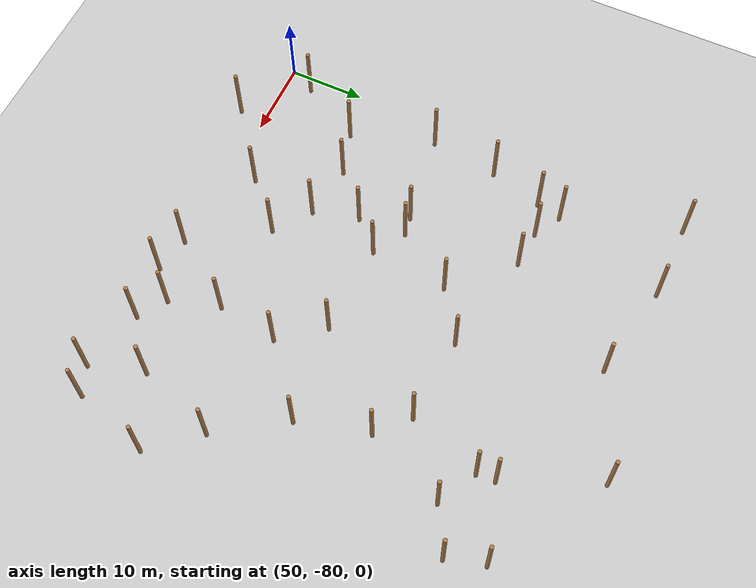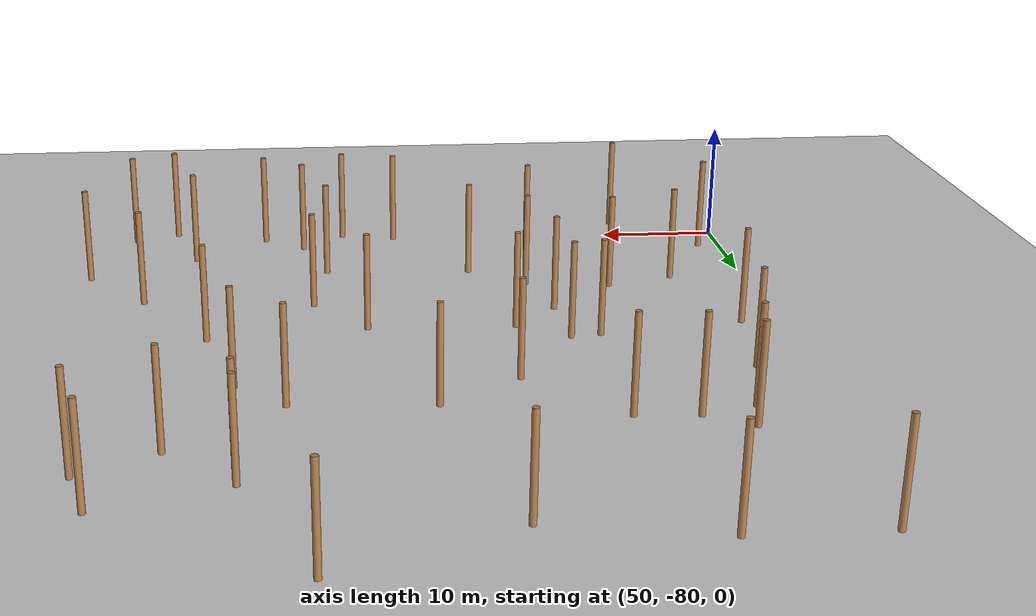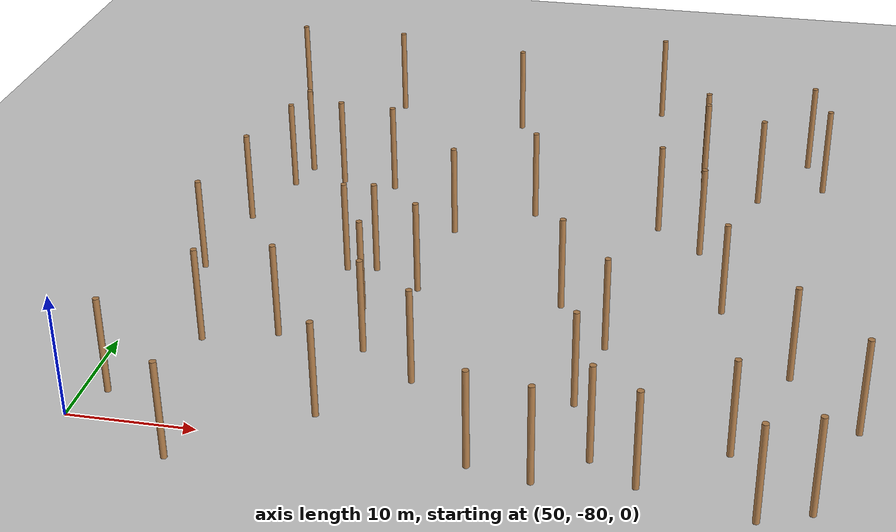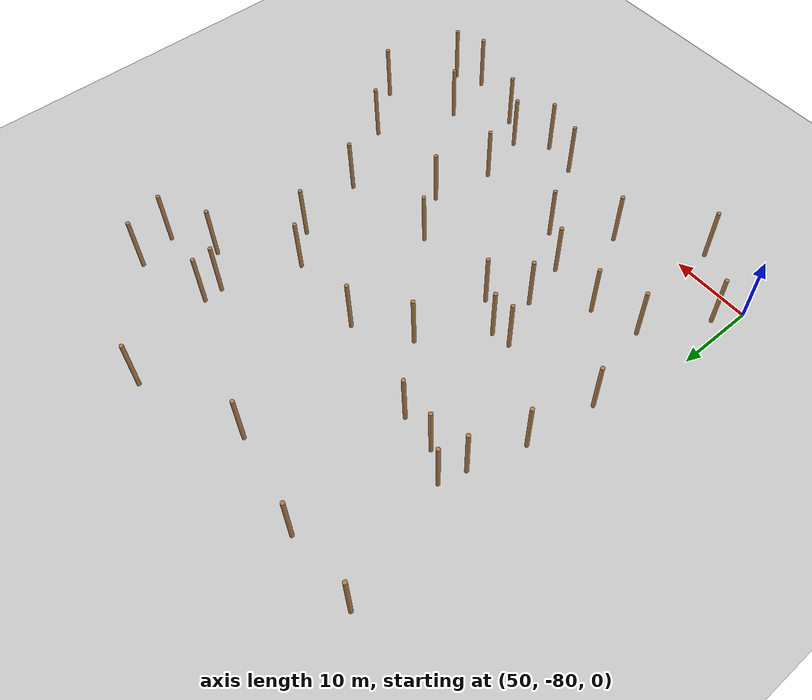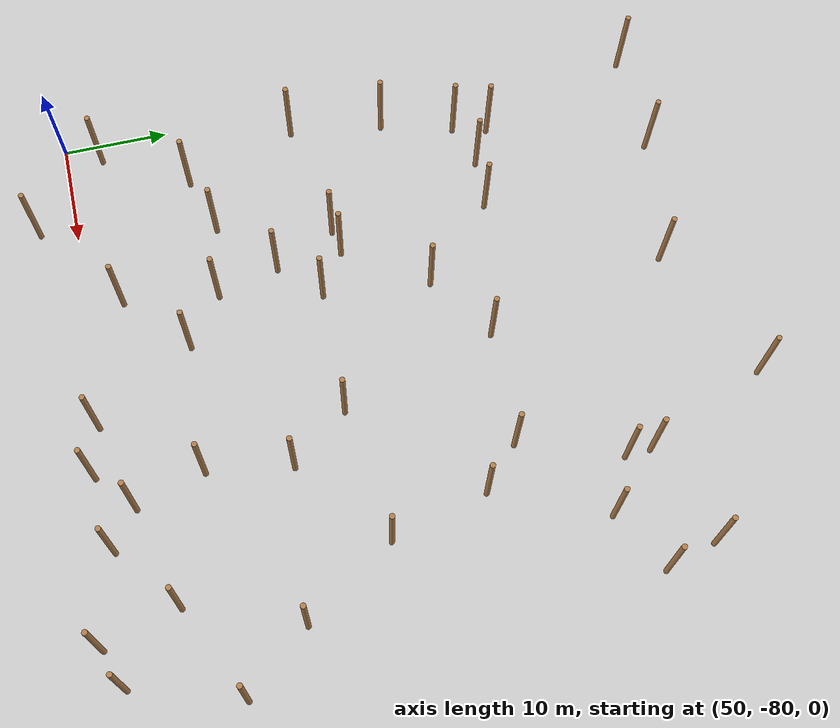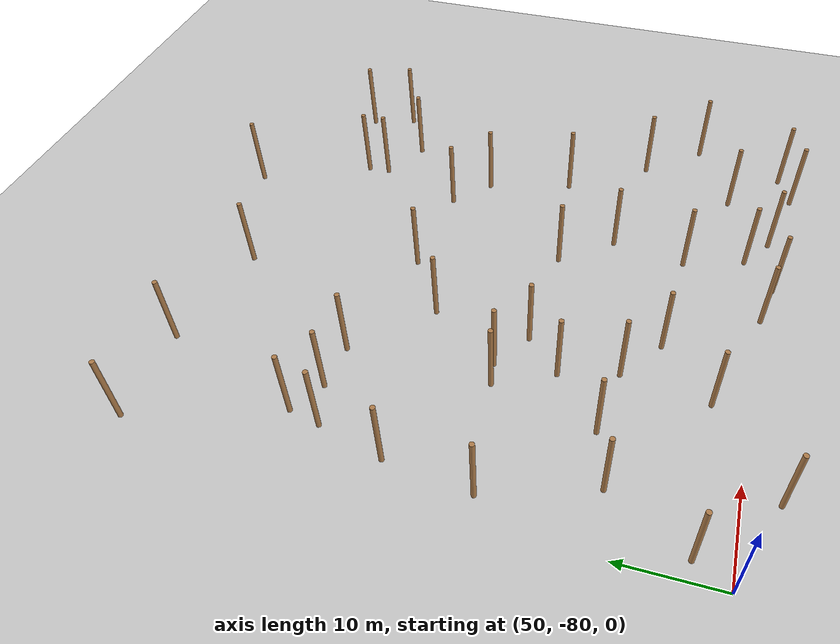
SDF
<sdf version="1.5">
 <world name="padure_tactica">
  <include><uri>model://sun</uri></include>
  <include><uri>model://ground_plane</uri></include>
  <model name="tree_12">
   <static>true</static>
   <pose>79.79 -80.54 4.0 0 0 0</pose>
   <link name="link">
    <collision name="collision">
     <geometry><cylinder><radius>0.25</radius><length>8.0</length></cylinder></geometry>
    </collision>
    <visual name="visual">
     <geometry><cylinder><radius>0.25</radius><length>8.0</length></cylinder></geometry>
     <material>
      <script><uri>file://media/materials/scripts/gazebo.material</uri><name>Gazebo/Wood</name></script>
     </material>
    </visual>
   </link>
  </model>
  <model name="tree_91">
   <static>true</static>
   <pose>74.30 -25.92 4.0 0 0 0</pose>
   <link name="link">
    <collision name="collision">
     <geometry><cylinder><radius>0.25</radius><length>8.0</length></cylinder></geometry>
    </collision>
    <visual name="visual">
     <geometry><cylinder><radius>0.25</radius><length>8.0</length></cylinder></geometry>
     <material>
      <script><uri>file://media/materials/scripts/gazebo.material</uri><name>Gazebo/Wood</name></script>
     </material>
    </visual>
   </link>
  </model>
  <model name="tree_187">
   <static>true</static>
   <pose>67.85 -76.66 4.0 0 0 0</pose>
   <link name="link">
    <collision name="collision">
     <geometry><cylinder><radius>0.25</radius><length>8.0</length></cylinder></geometry>
    </collision>
    <visual name="visual">
     <geometry><cylinder><radius>0.25</radius><length>8.0</length></cylinder></geometry>
     <material>
      <script><uri>file://media/materials/scripts/gazebo.material</uri><name>Gazebo/Wood</name></script>
     </material>
    </visual>
   </link>
  </model>
  <model name="tree_259">
   <static>true</static>
   <pose>58.87 -83.46 4.0 0 0 0</pose>
   <link name="link">
    <collision name="collision">
     <geometry><cylinder><radius>0.25</radius><length>8.0</length></cylinder></geometry>
    </collision>
    <visual name="visual">
     <geometry><cylinder><radius>0.25</radius><length>8.0</length></cylinder></geometry>
     <material>
      <script><uri>file://media/materials/scripts/gazebo.material</uri><name>Gazebo/Wood</name></script>
     </material>
    </visual>
   </link>
  </model>
  <model name="tree_265">
   <static>true</static>
   <pose>86.07 -71.87 4.0 0 0 0</pose>
   <link name="link">
    <collision name="collision">
     <geometry><cylinder><radius>0.25</radius><length>8.0</length></cylinder></geometry>
    </collision>
    <visual name="visual">
     <geometry><cylinder><radius>0.25</radius><length>8.0</length></cylinder></geometry>
     <material>
      <script><uri>file://media/materials/scripts/gazebo.material</uri><name>Gazebo/Wood</name></script>
     </material>
    </visual>
   </link>
  </model>
  <model name="tree_281">
   <static>true</static>
   <pose>88.09 -78.34 4.0 0 0 0</pose>
   <link name="link">
    <collision name="collision">
     <geometry><cylinder><radius>0.25</radius><length>8.0</length></cylinder></geometry>
    </collision>
    <visual name="visual">
     <geometry><cylinder><radius>0.25</radius><length>8.0</length></cylinder></geometry>
     <material>
      <script><uri>file://media/materials/scripts/gazebo.material</uri><name>Gazebo/Wood</name></script>
     </material>
    </visual>
   </link>
  </model>
  <model name="tree_293">
   <static>true</static>
   <pose>61.99 -66.75 4.0 0 0 0</pose>
   <link name="link">
    <collision name="collision">
     <geometry><cylinder><radius>0.25</radius><length>8.0</length></cylinder></geometry>
    </collision>
    <visual name="visual">
     <geometry><cylinder><radius>0.25</radius><length>8.0</length></cylinder></geometry>
     <material>
      <script><uri>file://media/materials/scripts/gazebo.material</uri><name>Gazebo/Wood</name></script>
     </material>
    </visual>
   </link>
  </model>
  <model name="tree_320">
   <static>true</static>
   <pose>87.56 -20.59 4.0 0 0 0</pose>
   <link name="link">
    <collision name="collision">
     <geometry><cylinder><radius>0.25</radius><length>8.0</length></cylinder></geometry>
    </collision>
    <visual name="visual">
     <geometry><cylinder><radius>0.25</radius><length>8.0</length></cylinder></geometry>
     <material>
      <script><uri>file://media/materials/scripts/gazebo.material</uri><name>Gazebo/Wood</name></script>
     </material>
    </visual>
   </link>
  </model>
  <model name="tree_331">
   <static>true</static>
   <pose>97.65 -75.83 4.0 0 0 0</pose>
   <link name="link">
    <collision name="collision">
     <geometry><cylinder><radius>0.25</radius><length>8.0</length></cylinder></geometry>
    </collision>
    <visual name="visual">
     <geometry><cylinder><radius>0.25</radius><length>8.0</length></cylinder></geometry>
     <material>
      <script><uri>file://media/materials/scripts/gazebo.material</uri><name>Gazebo/Wood</name></script>
     </material>
    </visual>
   </link>
  </model>
  <model name="tree_338">
   <static>true</static>
   <pose>103.44 -81.39 4.0 0 0 0</pose>
   <link name="link">
    <collision name="collision">
     <geometry><cylinder><radius>0.25</radius><length>8.0</length></cylinder></geometry>
    </collision>
    <visual name="visual">
     <geometry><cylinder><radius>0.25</radius><length>8.0</length></cylinder></geometry>
     <material>
      <script><uri>file://media/materials/scripts/gazebo.material</uri><name>Gazebo/Wood</name></script>
     </material>
    </visual>
   </link>
  </model>
  <model name="tree_367">
   <static>true</static>
   <pose>83.08 -58.52 4.0 0 0 0</pose>
   <link name="link">
    <collision name="collision">
     <geometry><cylinder><radius>0.25</radius><length>8.0</length></cylinder></geometry>
    </collision>
    <visual name="visual">
     <geometry><cylinder><radius>0.25</radius><length>8.0</length></cylinder></geometry>
     <material>
      <script><uri>file://media/materials/scripts/gazebo.material</uri><name>Gazebo/Wood</name></script>
     </material>
    </visual>
   </link>
  </model>
  <model name="tree_399">
   <static>true</static>
   <pose>84.46 -81.52 4.0 0 0 0</pose>
   <link name="link">
    <collision name="collision">
     <geometry><cylinder><radius>0.25</radius><length>8.0</length></cylinder></geometry>
    </collision>
    <visual name="visual">
     <geometry><cylinder><radius>0.25</radius><length>8.0</length></cylinder></geometry>
     <material>
      <script><uri>file://media/materials/scripts/gazebo.material</uri><name>Gazebo/Wood</name></script>
     </material>
    </visual>
   </link>
  </model>
  <model name="tree_471">
   <static>true</static>
   <pose>95.83 -57.01 4.0 0 0 0</pose>
   <link name="link">
    <collision name="collision">
     <geometry><cylinder><radius>0.25</radius><length>8.0</length></cylinder></geometry>
    </collision>
    <visual name="visual">
     <geometry><cylinder><radius>0.25</radius><length>8.0</length></cylinder></geometry>
     <material>
      <script><uri>file://media/materials/scripts/gazebo.material</uri><name>Gazebo/Wood</name></script>
     </material>
    </visual>
   </link>
  </model>
  <model name="tree_542">
   <static>true</static>
   <pose>89.52 -44.30 4.0 0 0 0</pose>
   <link name="link">
    <collision name="collision">
     <geometry><cylinder><radius>0.25</radius><length>8.0</length></cylinder></geometry>
    </collision>
    <visual name="visual">
     <geometry><cylinder><radius>0.25</radius><length>8.0</length></cylinder></geometry>
     <material>
      <script><uri>file://media/materials/scripts/gazebo.material</uri><name>Gazebo/Wood</name></script>
     </material>
    </visual>
   </link>
  </model>
  <model name="tree_597">
   <static>true</static>
   <pose>51.94 -23.53 4.0 0 0 0</pose>
   <link name="link">
    <collision name="collision">
     <geometry><cylinder><radius>0.25</radius><length>8.0</length></cylinder></geometry>
    </collision>
    <visual name="visual">
     <geometry><cylinder><radius>0.25</radius><length>8.0</length></cylinder></geometry>
     <material>
      <script><uri>file://media/materials/scripts/gazebo.material</uri><name>Gazebo/Wood</name></script>
     </material>
    </visual>
   </link>
  </model>
  <model name="tree_610">
   <static>true</static>
   <pose>92.65 -32.47 4.0 0 0 0</pose>
   <link name="link">
    <collision name="collision">
     <geometry><cylinder><radius>0.25</radius><length>8.0</length></cylinder></geometry>
    </collision>
    <visual name="visual">
     <geometry><cylinder><radius>0.25</radius><length>8.0</length></cylinder></geometry>
     <material>
      <script><uri>file://media/materials/scripts/gazebo.material</uri><name>Gazebo/Wood</name></script>
     </material>
    </visual>
   </link>
  </model>
  <model name="tree_616">
   <static>true</static>
   <pose>103.54 -34.35 4.0 0 0 0</pose>
   <link name="link">
    <collision name="collision">
     <geometry><cylinder><radius>0.25</radius><length>8.0</length></cylinder></geometry>
    </collision>
    <visual name="visual">
     <geometry><cylinder><radius>0.25</radius><length>8.0</length></cylinder></geometry>
     <material>
      <script><uri>file://media/materials/scripts/gazebo.material</uri><name>Gazebo/Wood</name></script>
     </material>
    </visual>
   </link>
  </model>
  <model name="tree_628">
   <static>true</static>
   <pose>72.12 -47.93 4.0 0 0 0</pose>
   <link name="link">
    <collision name="collision">
     <geometry><cylinder><radius>0.25</radius><length>8.0</length></cylinder></geometry>
    </collision>
    <visual name="visual">
     <geometry><cylinder><radius>0.25</radius><length>8.0</length></cylinder></geometry>
     <material>
      <script><uri>file://media/materials/scripts/gazebo.material</uri><name>Gazebo/Wood</name></script>
     </material>
    </visual>
   </link>
  </model>
  <model name="tree_653">
   <static>true</static>
   <pose>52.79 -57.72 4.0 0 0 0</pose>
   <link name="link">
    <collision name="collision">
     <geometry><cylinder><radius>0.25</radius><length>8.0</length></cylinder></geometry>
    </collision>
    <visual name="visual">
     <geometry><cylinder><radius>0.25</radius><length>8.0</length></cylinder></geometry>
     <material>
      <script><uri>file://media/materials/scripts/gazebo.material</uri><name>Gazebo/Wood</name></script>
     </material>
    </visual>
   </link>
  </model>
  <model name="tree_663">
   <static>true</static>
   <pose>56.69 -38.55 4.0 0 0 0</pose>
   <link name="link">
    <collision name="collision">
     <geometry><cylinder><radius>0.25</radius><length>8.0</length></cylinder></geometry>
    </collision>
    <visual name="visual">
     <geometry><cylinder><radius>0.25</radius><length>8.0</length></cylinder></geometry>
     <material>
      <script><uri>file://media/materials/scripts/gazebo.material</uri><name>Gazebo/Wood</name></script>
     </material>
    </visual>
   </link>
  </model>
  <model name="tree_686">
   <static>true</static>
   <pose>60.20 -40.52 4.0 0 0 0</pose>
   <link name="link">
    <collision name="collision">
     <geometry><cylinder><radius>0.25</radius><length>8.0</length></cylinder></geometry>
    </collision>
    <visual name="visual">
     <geometry><cylinder><radius>0.25</radius><length>8.0</length></cylinder></geometry>
     <material>
      <script><uri>file://media/materials/scripts/gazebo.material</uri><name>Gazebo/Wood</name></script>
     </material>
    </visual>
   </link>
  </model>
  <model name="tree_704">
   <static>true</static>
   <pose>65.03 -40.86 4.0 0 0 0</pose>
   <link name="link">
    <collision name="collision">
     <geometry><cylinder><radius>0.25</radius><length>8.0</length></cylinder></geometry>
    </collision>
    <visual name="visual">
     <geometry><cylinder><radius>0.25</radius><length>8.0</length></cylinder></geometry>
     <material>
      <script><uri>file://media/materials/scripts/gazebo.material</uri><name>Gazebo/Wood</name></script>
     </material>
    </visual>
   </link>
  </model>
  <model name="tree_709">
   <static>true</static>
   <pose>73.70 -71.16 4.0 0 0 0</pose>
   <link name="link">
    <collision name="collision">
     <geometry><cylinder><radius>0.25</radius><length>8.0</length></cylinder></geometry>
    </collision>
    <visual name="visual">
     <geometry><cylinder><radius>0.25</radius><length>8.0</length></cylinder></geometry>
     <material>
      <script><uri>file://media/materials/scripts/gazebo.material</uri><name>Gazebo/Wood</name></script>
     </material>
    </visual>
   </link>
  </model>
  <model name="tree_728">
   <static>true</static>
   <pose>102.13 -29.53 4.0 0 0 0</pose>
   <link name="link">
    <collision name="collision">
     <geometry><cylinder><radius>0.25</radius><length>8.0</length></cylinder></geometry>
    </collision>
    <visual name="visual">
     <geometry><cylinder><radius>0.25</radius><length>8.0</length></cylinder></geometry>
     <material>
      <script><uri>file://media/materials/scripts/gazebo.material</uri><name>Gazebo/Wood</name></script>
     </material>
    </visual>
   </link>
  </model>
  <model name="tree_766">
   <static>true</static>
   <pose>67.07 -55.56 4.0 0 0 0</pose>
   <link name="link">
    <collision name="collision">
     <geometry><cylinder><radius>0.25</radius><length>8.0</length></cylinder></geometry>
    </collision>
    <visual name="visual">
     <geometry><cylinder><radius>0.25</radius><length>8.0</length></cylinder></geometry>
     <material>
      <script><uri>file://media/materials/scripts/gazebo.material</uri><name>Gazebo/Wood</name></script>
     </material>
    </visual>
   </link>
  </model>
  <model name="tree_781">
   <static>true</static>
   <pose>101.47 -65.56 4.0 0 0 0</pose>
   <link name="link">
    <collision name="collision">
     <geometry><cylinder><radius>0.25</radius><length>8.0</length></cylinder></geometry>
    </collision>
    <visual name="visual">
     <geometry><cylinder><radius>0.25</radius><length>8.0</length></cylinder></geometry>
     <material>
      <script><uri>file://media/materials/scripts/gazebo.material</uri><name>Gazebo/Wood</name></script>
     </material>
    </visual>
   </link>
  </model>
  <model name="tree_788">
   <static>true</static>
   <pose>51.87 -76.52 4.0 0 0 0</pose>
   <link name="link">
    <collision name="collision">
     <geometry><cylinder><radius>0.25</radius><length>8.0</length></cylinder></geometry>
    </collision>
    <visual name="visual">
     <geometry><cylinder><radius>0.25</radius><length>8.0</length></cylinder></geometry>
     <material>
      <script><uri>file://media/materials/scripts/gazebo.material</uri><name>Gazebo/Wood</name></script>
     </material>
    </visual>
   </link>
  </model>
  <model name="tree_798">
   <static>true</static>
   <pose>53.98 -48.76 4.0 0 0 0</pose>
   <link name="link">
    <collision name="collision">
     <geometry><cylinder><radius>0.25</radius><length>8.0</length></cylinder></geometry>
    </collision>
    <visual name="visual">
     <geometry><cylinder><radius>0.25</radius><length>8.0</length></cylinder></geometry>
     <material>
      <script><uri>file://media/materials/scripts/gazebo.material</uri><name>Gazebo/Wood</name></script>
     </material>
    </visual>
   </link>
  </model>
  <model name="tree_806">
   <static>true</static>
   <pose>99.76 -82.86 4.0 0 0 0</pose>
   <link name="link">
    <collision name="collision">
     <geometry><cylinder><radius>0.25</radius><length>8.0</length></cylinder></geometry>
    </collision>
    <visual name="visual">
     <geometry><cylinder><radius>0.25</radius><length>8.0</length></cylinder></geometry>
     <material>
      <script><uri>file://media/materials/scripts/gazebo.material</uri><name>Gazebo/Wood</name></script>
     </material>
    </visual>
   </link>
  </model>
  <model name="tree_817">
   <static>true</static>
   <pose>87.32 -63.97 4.0 0 0 0</pose>
   <link name="link">
    <collision name="collision">
     <geometry><cylinder><radius>0.25</radius><length>8.0</length></cylinder></geometry>
    </collision>
    <visual name="visual">
     <geometry><cylinder><radius>0.25</radius><length>8.0</length></cylinder></geometry>
     <material>
      <script><uri>file://media/materials/scripts/gazebo.material</uri><name>Gazebo/Wood</name></script>
     </material>
    </visual>
   </link>
  </model>
  <model name="tree_818">
   <static>true</static>
   <pose>106.53 -71.60 4.0 0 0 0</pose>
   <link name="link">
    <collision name="collision">
     <geometry><cylinder><radius>0.25</radius><length>8.0</length></cylinder></geometry>
    </collision>
    <visual name="visual">
     <geometry><cylinder><radius>0.25</radius><length>8.0</length></cylinder></geometry>
     <material>
      <script><uri>file://media/materials/scripts/gazebo.material</uri><name>Gazebo/Wood</name></script>
     </material>
    </visual>
   </link>
  </model>
  <model name="tree_843">
   <static>true</static>
   <pose>67.49 -61.82 4.0 0 0 0</pose>
   <link name="link">
    <collision name="collision">
     <geometry><cylinder><radius>0.25</radius><length>8.0</length></cylinder></geometry>
    </collision>
    <visual name="visual">
     <geometry><cylinder><radius>0.25</radius><length>8.0</length></cylinder></geometry>
     <material>
      <script><uri>file://media/materials/scripts/gazebo.material</uri><name>Gazebo/Wood</name></script>
     </material>
    </visual>
   </link>
  </model>
  <model name="tree_857">
   <static>true</static>
   <pose>64.64 -55.93 4.0 0 0 0</pose>
   <link name="link">
    <collision name="collision">
     <geometry><cylinder><radius>0.25</radius><length>8.0</length></cylinder></geometry>
    </collision>
    <visual name="visual">
     <geometry><cylinder><radius>0.25</radius><length>8.0</length></cylinder></geometry>
     <material>
      <script><uri>file://media/materials/scripts/gazebo.material</uri><name>Gazebo/Wood</name></script>
     </material>
    </visual>
   </link>
  </model>
  <model name="tree_892">
   <static>true</static>
   <pose>91.56 -80.72 4.0 0 0 0</pose>
   <link name="link">
    <collision name="collision">
     <geometry><cylinder><radius>0.25</radius><length>8.0</length></cylinder></geometry>
    </collision>
    <visual name="visual">
     <geometry><cylinder><radius>0.25</radius><length>8.0</length></cylinder></geometry>
     <material>
      <script><uri>file://media/materials/scripts/gazebo.material</uri><name>Gazebo/Wood</name></script>
     </material>
    </visual>
   </link>
  </model>
  <model name="tree_910">
   <static>true</static>
   <pose>92.80 -34.86 4.0 0 0 0</pose>
   <link name="link">
    <collision name="collision">
     <geometry><cylinder><radius>0.25</radius><length>8.0</length></cylinder></geometry>
    </collision>
    <visual name="visual">
     <geometry><cylinder><radius>0.25</radius><length>8.0</length></cylinder></geometry>
     <material>
      <script><uri>file://media/materials/scripts/gazebo.material</uri><name>Gazebo/Wood</name></script>
     </material>
    </visual>
   </link>
  </model>
  <model name="tree_954">
   <static>true</static>
   <pose>78.53 -43.64 4.0 0 0 0</pose>
   <link name="link">
    <collision name="collision">
     <geometry><cylinder><radius>0.25</radius><length>8.0</length></cylinder></geometry>
    </collision>
    <visual name="visual">
     <geometry><cylinder><radius>0.25</radius><length>8.0</length></cylinder></geometry>
     <material>
      <script><uri>file://media/materials/scripts/gazebo.material</uri><name>Gazebo/Wood</name></script>
     </material>
    </visual>
   </link>
  </model>
  <model name="tree_1027">
   <static>true</static>
   <pose>61.91 -23.56 4.0 0 0 0</pose>
   <link name="link">
    <collision name="collision">
     <geometry><cylinder><radius>0.25</radius><length>8.0</length></cylinder></geometry>
    </collision>
    <visual name="visual">
     <geometry><cylinder><radius>0.25</radius><length>8.0</length></cylinder></geometry>
     <material>
      <script><uri>file://media/materials/scripts/gazebo.material</uri><name>Gazebo/Wood</name></script>
     </material>
    </visual>
   </link>
  </model>
  <model name="tree_1063">
   <static>true</static>
   <pose>56.31 -68.45 4.0 0 0 0</pose>
   <link name="link">
    <collision name="collision">
     <geometry><cylinder><radius>0.25</radius><length>8.0</length></cylinder></geometry>
    </collision>
    <visual name="visual">
     <geometry><cylinder><radius>0.25</radius><length>8.0</length></cylinder></geometry>
     <material>
      <script><uri>file://media/materials/scripts/gazebo.material</uri><name>Gazebo/Wood</name></script>
     </material>
    </visual>
   </link>
  </model>
  <model name="tree_1064">
   <static>true</static>
   <pose>97.83 -37.49 4.0 0 0 0</pose>
   <link name="link">
    <collision name="collision">
     <geometry><cylinder><radius>0.25</radius><length>8.0</length></cylinder></geometry>
    </collision>
    <visual name="visual">
     <geometry><cylinder><radius>0.25</radius><length>8.0</length></cylinder></geometry>
     <material>
      <script><uri>file://media/materials/scripts/gazebo.material</uri><name>Gazebo/Wood</name></script>
     </material>
    </visual>
   </link>
  </model>
  <model name="tree_1075">
   <static>true</static>
   <pose>55.89 -41.84 4.0 0 0 0</pose>
   <link name="link">
    <collision name="collision">
     <geometry><cylinder><radius>0.25</radius><length>8.0</length></cylinder></geometry>
    </collision>
    <visual name="visual">
     <geometry><cylinder><radius>0.25</radius><length>8.0</length></cylinder></geometry>
     <material>
      <script><uri>file://media/materials/scripts/gazebo.material</uri><name>Gazebo/Wood</name></script>
     </material>
    </visual>
   </link>
  </model>
  <model name="tree_1123">
   <static>true</static>
   <pose>93.38 -47.83 4.0 0 0 0</pose>
   <link name="link">
    <collision name="collision">
     <geometry><cylinder><radius>0.25</radius><length>8.0</length></cylinder></geometry>
    </collision>
    <visual name="visual">
     <geometry><cylinder><radius>0.25</radius><length>8.0</length></cylinder></geometry>
     <material>
      <script><uri>file://media/materials/scripts/gazebo.material</uri><name>Gazebo/Wood</name></script>
     </material>
    </visual>
   </link>
  </model>
  <model name="tree_1149">
   <static>true</static>
   <pose>71.15 -58.13 4.0 0 0 0</pose>
   <link name="link">
    <collision name="collision">
     <geometry><cylinder><radius>0.25</radius><length>8.0</length></cylinder></geometry>
    </collision>
    <visual name="visual">
     <geometry><cylinder><radius>0.25</radius><length>8.0</length></cylinder></geometry>
     <material>
      <script><uri>file://media/materials/scripts/gazebo.material</uri><name>Gazebo/Wood</name></script>
     </material>
    </visual>
   </link>
  </model>
  <model name="tree_1158">
   <static>true</static>
   <pose>69.08 -67.73 4.0 0 0 0</pose>
   <link name="link">
    <collision name="collision">
     <geometry><cylinder><radius>0.25</radius><length>8.0</length></cylinder></geometry>
    </collision>
    <visual name="visual">
     <geometry><cylinder><radius>0.25</radius><length>8.0</length></cylinder></geometry>
     <material>
      <script><uri>file://media/materials/scripts/gazebo.material</uri><name>Gazebo/Wood</name></script>
     </material>
    </visual>
   </link>
  </model>
 </world>
</sdf>
